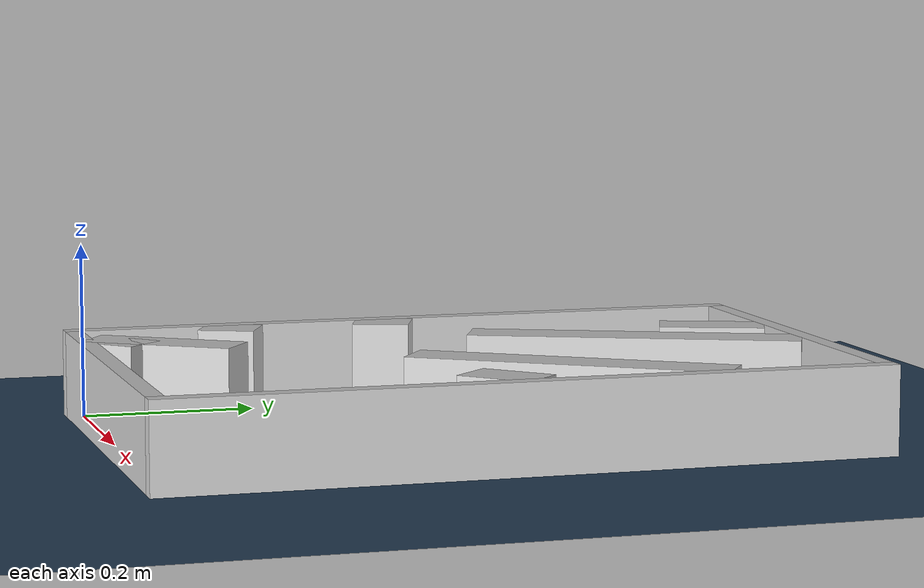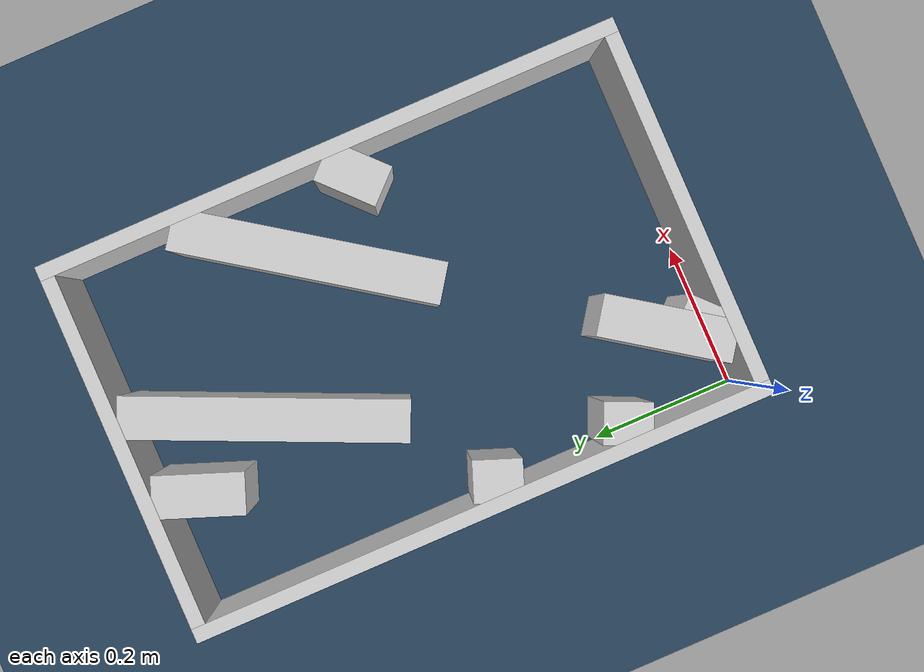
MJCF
<?xml version="1.0" ?>
<mujoco model="generated_real_template">
  <compiler angle="degree"/>
  <option timestep="0.002" integrator="implicitfast" iterations="100" cone="elliptic"/>
  <default>
    <geom density="1"/>
  </default>
  <asset>
    <texture builtin="gradient" height="3072" rgb1="0.3 0.5 0.7" rgb2="0 0 0" type="skybox" width="512"/>
    <texture builtin="checker" height="300" mark="edge" markrgb="0.8 0.8 0.8" name="groundplane" rgb1="0.2 0.3 0.4" rgb2="0.1 0.2 0.3" type="2d" width="300"/>
    <material name="groundplane" reflectance="0.2" texrepeat="5 5" texture="groundplane" texuniform="true"/>
  </asset>
  <worldbody>
    <light dir="0 0 -1" directional="true" pos="0 0 1.5"/>
    <geom name="floor" type="plane" condim="4" friction="0.5 0.005 0.001" material="groundplane" size="0 0 0.05"/>
    <body name="walls">
      <geom name="wall_boundary_left" type="box" condim="4" friction="1.0 0.005 0.0001" rgba="0.8 0.8 0.8 1" pos="-0.010000 0.387500 0.050000" euler="0 0 0.000000" size="0.010000 0.407500 0.050000"/>
      <geom name="wall_boundary_right" type="box" condim="4" friction="1.0 0.005 0.0001" rgba="0.8 0.8 0.8 1" pos="0.500000 0.387500 0.050000" euler="0 0 0.000000" size="0.010000 0.407500 0.050000"/>
      <geom name="wall_boundary_bottom" type="box" condim="4" friction="1.0 0.005 0.0001" rgba="0.8 0.8 0.8 1" pos="0.245000 -0.010000 0.050000" euler="0 0 0.000000" size="0.245000 0.010000 0.050000"/>
      <geom name="wall_boundary_top" type="box" condim="4" friction="1.0 0.005 0.0001" rgba="0.8 0.8 0.8 1" pos="0.245000 0.785000 0.050000" euler="0 0 0.000000" size="0.245000 0.010000 0.050000"/>
      <geom name="wall_inner_1_1" type="box" condim="4" friction="1.0 0.005 0.0001" rgba="0.8 0.8 0.8 1" pos="0.383369 0.465735 0.050000" euler="0 0 -124.707349" size="0.181250 0.028500 0.050000"/>
      <geom name="wall_inner_1_2" type="box" condim="4" friction="1.0 0.005 0.0001" rgba="0.8 0.8 0.8 1" pos="0.111982 0.073909 0.050000" euler="0 0 -124.707349" size="0.089906 0.028500 0.050000"/>
      <geom name="wall_inner_2_1" type="box" condim="4" friction="1.0 0.005 0.0001" rgba="0.8 0.8 0.8 1" pos="0.018357 0.354222 0.050000" euler="0 0 69.365813" size="0.033155 0.028500 0.050000"/>
      <geom name="wall_inner_2_2" type="box" condim="4" friction="1.0 0.005 0.0001" rgba="0.8 0.8 0.8 1" pos="0.155207 0.717649 0.050000" euler="0 0 69.365813" size="0.061283 0.028500 0.050000"/>
      <geom name="wall_inner_3_1" type="box" condim="4" friction="1.0 0.005 0.0001" rgba="0.8 0.8 0.8 1" pos="0.096058 0.025801 0.050000" euler="0 0 43.443025" size="0.036512 0.028500 0.050000"/>
      <geom name="wall_inner_3_2" type="box" condim="4" friction="1.0 0.005 0.0001" rgba="0.8 0.8 0.8 1" pos="0.458161 0.368740 0.050000" euler="0 0 43.443025" size="0.043852 0.028500 0.050000"/>
      <geom name="wall_inner_4_1" type="box" condim="4" friction="1.0 0.005 0.0001" rgba="0.8 0.8 0.8 1" pos="0.211915 0.601121 0.050000" euler="0 0 -114.075842" size="0.190446 0.028500 0.050000"/>
      <geom name="wall_inner_4_2" type="box" condim="4" friction="1.0 0.005 0.0001" rgba="0.8 0.8 0.8 1" pos="0.019372 0.170198 0.050000" euler="0 0 -114.075842" size="0.032726 0.028500 0.050000"/>
    </body>
  </worldbody>
</mujoco>
